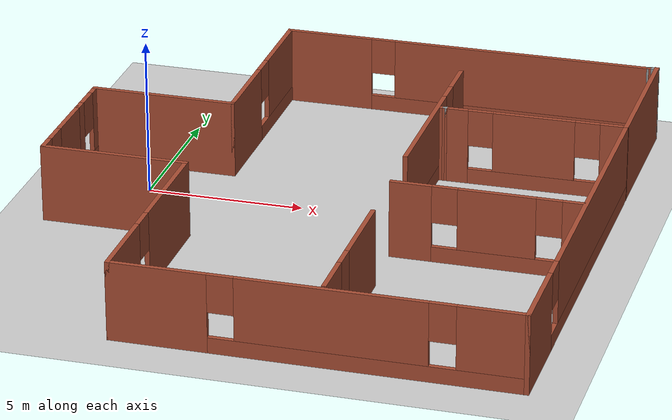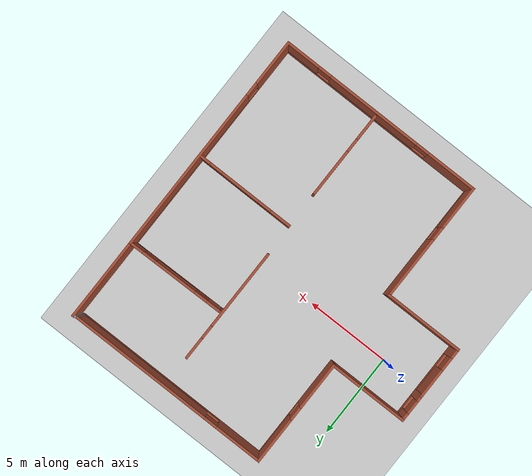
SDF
<sdf version="1.6">
 <world name="default">
  <light name="sun" type="directional">
   <pose>0 0 10 0 -0 0</pose>
   <diffuse>0.8 0.8 0.8 1</diffuse>
   <specular>0.2 0.2 0.2 1</specular>
   <attenuation>
    <range>1000</range>
    <constant>0.9</constant>
    <linear>0.01</linear>
    <quadratic>0.001</quadratic>
   </attenuation>
   <direction>-0.5 0.1 -0.9</direction>
  </light>
  <model name="ground_plane">
   <static>1</static>
   <link name="link">
    <collision name="collision">
     <geometry><plane><normal>0 0 1</normal><size>100 100</size></plane></geometry>
     <surface><friction><ode><mu>100</mu><mu2>50</mu2></ode></friction></surface>
    </collision>
    <visual name="visual">
     <cast_shadows>0</cast_shadows>
     <geometry><plane><normal>0 0 1</normal><size>100 100</size></plane></geometry>
     <material>
      <script><uri>file://media/materials/scripts/gazebo.material</uri><name>Gazebo/Grey</name></script>
     </material>
    </visual>
   </link>
  </model>
  <gravity>0 0 -9.8</gravity>
  <magnetic_field>6e-06 2.3e-05 -4.2e-05</magnetic_field>
  <atmosphere type="adiabatic"/>
  <physics name="default_physics" default="0" type="ode">
   <max_step_size>0.001</max_step_size>
   <real_time_factor>1</real_time_factor>
   <real_time_update_rate>1000</real_time_update_rate>
  </physics>
  <scene><ambient>0.4 0.4 0.4 1</ambient><background>0.7 0.7 0.7 1</background><shadows>1</shadows></scene>
  <audio><device>default</device></audio>
  <spherical_coordinates>
   <surface_model>EARTH_WGS84</surface_model>
   <latitude_deg>0</latitude_deg>
   <longitude_deg>0</longitude_deg>
   <elevation>0</elevation>
   <heading_deg>0</heading_deg>
  </spherical_coordinates>
  <model name="my_world">
   <pose>6.08016 -0.87709 0 0 -0 0</pose>
   <link name="Wall_0">
    <pose>-8.48163 -0.456626 0 0 -0 1.5708</pose>
    <visual name="Wall_0_Visual_0">
     <pose>-1.30339 0 1.25 0 -0 0</pose>
     <geometry><box><size>0.643213 0.15 2.5</size></box></geometry>
     <material>
      <script><uri>file://media/materials/scripts/gazebo.material</uri><name>Gazebo/Bricks</name></script>
      <ambient>1 1 1 1</ambient>
     </material>
     <meta><layer>0</layer></meta>
    </visual>
    <collision name="Wall_0_Collision_0">
     <geometry><box><size>0.643213 0.15 2.5</size></box></geometry>
     <pose>-1.30339 0 1.25 0 -0 0</pose>
    </collision>
    <visual name="Wall_0_Visual_1">
     <pose>0.321607 0 0.25 0 -0 0</pose>
     <geometry><box><size>2.60679 0.15 0.5</size></box></geometry>
     <material>
      <script><uri>file://media/materials/scripts/gazebo.material</uri><name>Gazebo/Bricks</name></script>
      <ambient>1 1 1 1</ambient>
     </material>
     <meta><layer>0</layer></meta>
    </visual>
    <collision name="Wall_0_Collision_1">
     <geometry><box><size>2.60679 0.15 0.5</size></box></geometry>
     <pose>0.321607 0 0.25 0 -0 0</pose>
    </collision>
    <visual name="Wall_0_Visual_2">
     <pose>0.721607 0 1.5 0 -0 0</pose>
     <geometry><box><size>1.80679 0.15 2</size></box></geometry>
     <material>
      <script><uri>file://media/materials/scripts/gazebo.material</uri><name>Gazebo/Bricks</name></script>
      <ambient>1 1 1 1</ambient>
     </material>
     <meta><layer>0</layer></meta>
    </visual>
    <collision name="Wall_0_Collision_2">
     <geometry><box><size>1.80679 0.15 2</size></box></geometry>
     <pose>0.721607 0 1.5 0 -0 0</pose>
    </collision>
    <visual name="Wall_0_Visual_3">
     <pose>-0.581787 0 1.9 0 -0 0</pose>
     <geometry><box><size>0.8 0.15 1.2</size></box></geometry>
     <material>
      <script><uri>file://media/materials/scripts/gazebo.material</uri><name>Gazebo/Bricks</name></script>
      <ambient>1 1 1 1</ambient>
     </material>
     <meta><layer>0</layer></meta>
    </visual>
    <collision name="Wall_0_Collision_3">
     <geometry><box><size>0.8 0.15 1.2</size></box></geometry>
     <pose>-0.581787 0 1.9 0 -0 0</pose>
    </collision>
   </link>
   <link name="Wall_10">
    <pose>8.46837 -2.43163 0 0 -0 1.5708</pose>
    <visual name="Wall_10_Visual_0">
     <pose>-5.36626 0 1.25 0 -0 0</pose>
     <geometry><box><size>2.76748 0.15 2.5</size></box></geometry>
     <material>
      <script><uri>file://media/materials/scripts/gazebo.material</uri><name>Gazebo/Bricks</name></script>
      <ambient>1 1 1 1</ambient>
     </material>
     <meta><layer>0</layer></meta>
    </visual>
    <collision name="Wall_10_Collision_0">
     <geometry><box><size>2.76748 0.15 2.5</size></box></geometry>
     <pose>-5.36626 0 1.25 0 -0 0</pose>
    </collision>
    <visual name="Wall_10_Visual_1">
     <pose>1.38374 0 0.25 0 -0 0</pose>
     <geometry><box><size>10.7325 0.15 0.5</size></box></geometry>
     <material>
      <script><uri>file://media/materials/scripts/gazebo.material</uri><name>Gazebo/Bricks</name></script>
      <ambient>1 1 1 1</ambient>
     </material>
     <meta><layer>0</layer></meta>
    </visual>
    <collision name="Wall_10_Collision_1">
     <geometry><box><size>10.7325 0.15 0.5</size></box></geometry>
     <pose>1.38374 0 0.25 0 -0 0</pose>
    </collision>
    <visual name="Wall_10_Visual_2">
     <pose>1.78374 0 1.5 0 -0 0</pose>
     <geometry><box><size>9.93252 0.15 2</size></box></geometry>
     <material>
      <script><uri>file://media/materials/scripts/gazebo.material</uri><name>Gazebo/Bricks</name></script>
      <ambient>1 1 1 1</ambient>
     </material>
     <meta><layer>0</layer></meta>
    </visual>
    <collision name="Wall_10_Collision_2">
     <geometry><box><size>9.93252 0.15 2</size></box></geometry>
     <pose>1.78374 0 1.5 0 -0 0</pose>
    </collision>
    <visual name="Wall_10_Visual_3">
     <pose>-3.58252 0 1.9 0 -0 0</pose>
     <geometry><box><size>0.8 0.15 1.2</size></box></geometry>
     <material>
      <script><uri>file://media/materials/scripts/gazebo.material</uri><name>Gazebo/Bricks</name></script>
      <ambient>1 1 1 1</ambient>
     </material>
     <meta><layer>0</layer></meta>
    </visual>
    <collision name="Wall_10_Collision_3">
     <geometry><box><size>0.8 0.15 1.2</size></box></geometry>
     <pose>-3.58252 0 1.9 0 -0 0</pose>
    </collision>
   </link>
   <link name="Wall_14">
    <pose>-3.88163 5.86837 0 0 -0 1.5708</pose>
    <visual name="Wall_14_Visual_0">
     <pose>-1.80073 0 1.25 0 -0 0</pose>
     <geometry><box><size>2.89854 0.15 2.5</size></box></geometry>
     <material>
      <script><uri>file://media/materials/scripts/gazebo.material</uri><name>Gazebo/Bricks</name></script>
      <ambient>1 1 1 1</ambient>
     </material>
     <meta><layer>0</layer></meta>
    </visual>
    <collision name="Wall_14_Collision_0">
     <geometry><box><size>2.89854 0.15 2.5</size></box></geometry>
     <pose>-1.80073 0 1.25 0 -0 0</pose>
    </collision>
    <visual name="Wall_14_Visual_1">
     <pose>1.44927 0 0.25 0 -0 0</pose>
     <geometry><box><size>3.60146 0.15 0.5</size></box></geometry>
     <material>
      <script><uri>file://media/materials/scripts/gazebo.material</uri><name>Gazebo/Bricks</name></script>
      <ambient>1 1 1 1</ambient>
     </material>
     <meta><layer>0</layer></meta>
    </visual>
    <collision name="Wall_14_Collision_1">
     <geometry><box><size>3.60146 0.15 0.5</size></box></geometry>
     <pose>1.44927 0 0.25 0 -0 0</pose>
    </collision>
    <visual name="Wall_14_Visual_2">
     <pose>1.84927 0 1.5 0 -0 0</pose>
     <geometry><box><size>2.80146 0.15 2</size></box></geometry>
     <material>
      <script><uri>file://media/materials/scripts/gazebo.material</uri><name>Gazebo/Bricks</name></script>
      <ambient>1 1 1 1</ambient>
     </material>
     <meta><layer>0</layer></meta>
    </visual>
    <collision name="Wall_14_Collision_2">
     <geometry><box><size>2.80146 0.15 2</size></box></geometry>
     <pose>1.84927 0 1.5 0 -0 0</pose>
    </collision>
    <visual name="Wall_14_Visual_3">
     <pose>0.048538 0 1.9 0 -0 0</pose>
     <geometry><box><size>0.8 0.15 1.2</size></box></geometry>
     <material>
      <script><uri>file://media/materials/scripts/gazebo.material</uri><name>Gazebo/Bricks</name></script>
      <ambient>1 1 1 1</ambient>
     </material>
     <meta><layer>0</layer></meta>
    </visual>
    <collision name="Wall_14_Collision_3">
     <geometry><box><size>0.8 0.15 1.2</size></box></geometry>
     <pose>0.048538 0 1.9 0 -0 0</pose>
    </collision>
   </link>
   <link name="Wall_15">
    <pose>2.16837 9.04337 0 0 -0 0</pose>
    <visual name="Wall_15_Visual_0">
     <pose>-4.67821 0 1.25 0 -0 0</pose>
     <geometry><box><size>2.89358 0.15 2.5</size></box></geometry>
     <material>
      <script><uri>file://media/materials/scripts/gazebo.material</uri><name>Gazebo/Bricks</name></script>
      <ambient>1 1 1 1</ambient>
     </material>
     <meta><layer>0</layer></meta>
    </visual>
    <collision name="Wall_15_Collision_0">
     <geometry><box><size>2.89358 0.15 2.5</size></box></geometry>
     <pose>-4.67821 0 1.25 0 -0 0</pose>
    </collision>
    <visual name="Wall_15_Visual_1">
     <pose>1.44679 0 0.25 0 -0 0</pose>
     <geometry><box><size>9.35642 0.15 0.5</size></box></geometry>
     <material>
      <script><uri>file://media/materials/scripts/gazebo.material</uri><name>Gazebo/Bricks</name></script>
      <ambient>1 1 1 1</ambient>
     </material>
     <meta><layer>0</layer></meta>
    </visual>
    <collision name="Wall_15_Collision_1">
     <geometry><box><size>9.35642 0.15 0.5</size></box></geometry>
     <pose>1.44679 0 0.25 0 -0 0</pose>
    </collision>
    <visual name="Wall_15_Visual_2">
     <pose>1.84679 0 1.5 0 -0 0</pose>
     <geometry><box><size>8.55642 0.15 2</size></box></geometry>
     <material>
      <script><uri>file://media/materials/scripts/gazebo.material</uri><name>Gazebo/Bricks</name></script>
      <ambient>1 1 1 1</ambient>
     </material>
     <meta><layer>0</layer></meta>
    </visual>
    <collision name="Wall_15_Collision_2">
     <geometry><box><size>8.55642 0.15 2</size></box></geometry>
     <pose>1.84679 0 1.5 0 -0 0</pose>
    </collision>
    <visual name="Wall_15_Visual_3">
     <pose>-2.83142 0 1.9 0 -0 0</pose>
     <geometry><box><size>0.8 0.15 1.2</size></box></geometry>
     <material>
      <script><uri>file://media/materials/scripts/gazebo.material</uri><name>Gazebo/Bricks</name></script>
      <ambient>1 1 1 1</ambient>
     </material>
     <meta><layer>0</layer></meta>
    </visual>
    <collision name="Wall_15_Collision_3">
     <geometry><box><size>0.8 0.15 1.2</size></box></geometry>
     <pose>-2.83142 0 1.9 0 -0 0</pose>
    </collision>
   </link>
   <link name="Wall_17">
    <collision name="Wall_17_Collision">
     <geometry><box><size>5 0.15 2.5</size></box></geometry>
     <pose>0 0 1.25 0 -0 0</pose>
    </collision>
    <visual name="Wall_17_Visual">
     <pose>0 0 1.25 0 -0 0</pose>
     <geometry><box><size>5 0.15 2.5</size></box></geometry>
     <material>
      <script><uri>file://media/materials/scripts/gazebo.material</uri><name>Gazebo/Bricks</name></script>
      <ambient>1 1 1 1</ambient>
     </material>
     <meta><layer>0</layer></meta>
    </visual>
    <pose>8.46837 6.66837 0 0 -0 1.5708</pose>
   </link>
   <link name="Wall_18">
    <collision name="Wall_18_Collision">
     <geometry><box><size>0.404951 0.15 2.5</size></box></geometry>
     <pose>0 0 1.25 0 -0 0</pose>
    </collision>
    <visual name="Wall_18_Visual">
     <pose>0 0 1.25 0 -0 0</pose>
     <geometry><box><size>0.404951 0.15 2.5</size></box></geometry>
     <material>
      <script><uri>file://media/materials/scripts/gazebo.material</uri><name>Gazebo/Grey</name></script>
      <ambient>1 1 1 1</ambient>
     </material>
     <meta><layer>0</layer></meta>
    </visual>
    <pose>8.34337 9.06837 0 0 -0 -2.9442</pose>
   </link>
   <link name="Wall_2">
    <pose>-8.48163 1.89337 0 0 -0 1.5708</pose>
    <visual name="Wall_2_Visual_0">
     <pose>-0.658826 0 1.25 0 -0 0</pose>
     <geometry><box><size>0.432348 0.15 2.5</size></box></geometry>
     <material>
      <script><uri>file://media/materials/scripts/gazebo.material</uri><name>Gazebo/Bricks</name></script>
      <ambient>1 1 1 1</ambient>
     </material>
     <meta><layer>0</layer></meta>
    </visual>
    <collision name="Wall_2_Collision_0">
     <geometry><box><size>0.432348 0.15 2.5</size></box></geometry>
     <pose>-0.658826 0 1.25 0 -0 0</pose>
    </collision>
    <visual name="Wall_2_Visual_1">
     <pose>0.216174 0 0.25 0 -0 0</pose>
     <geometry><box><size>1.31765 0.15 0.5</size></box></geometry>
     <material>
      <script><uri>file://media/materials/scripts/gazebo.material</uri><name>Gazebo/Bricks</name></script>
      <ambient>1 1 1 1</ambient>
     </material>
     <meta><layer>0</layer></meta>
    </visual>
    <collision name="Wall_2_Collision_1">
     <geometry><box><size>1.31765 0.15 0.5</size></box></geometry>
     <pose>0.216174 0 0.25 0 -0 0</pose>
    </collision>
    <visual name="Wall_2_Visual_2">
     <pose>0.616174 0 1.5 0 -0 0</pose>
     <geometry><box><size>0.517652 0.15 2</size></box></geometry>
     <material>
      <script><uri>file://media/materials/scripts/gazebo.material</uri><name>Gazebo/Bricks</name></script>
      <ambient>1 1 1 1</ambient>
     </material>
     <meta><layer>0</layer></meta>
    </visual>
    <collision name="Wall_2_Collision_2">
     <geometry><box><size>0.517652 0.15 2</size></box></geometry>
     <pose>0.616174 0 1.5 0 -0 0</pose>
    </collision>
    <visual name="Wall_2_Visual_3">
     <pose>-0.042652 0 1.9 0 -0 0</pose>
     <geometry><box><size>0.8 0.15 1.2</size></box></geometry>
     <material>
      <script><uri>file://media/materials/scripts/gazebo.material</uri><name>Gazebo/Bricks</name></script>
      <ambient>1 1 1 1</ambient>
     </material>
     <meta><layer>0</layer></meta>
    </visual>
    <collision name="Wall_2_Collision_3">
     <geometry><box><size>0.8 0.15 1.2</size></box></geometry>
     <pose>-0.042652 0 1.9 0 -0 0</pose>
    </collision>
   </link>
   <link name="Wall_26">
    <pose>2.42963 3.70231 0 0 -0 -1.5708</pose>
    <visual name="Wall_26_Visual_0">
     <pose>-2.81654 0 1.25 0 -0 0</pose>
     <geometry><box><size>1.36692 0.15 2.5</size></box></geometry>
     <material>
      <script><uri>file://media/materials/scripts/gazebo.material</uri><name>Gazebo/Bricks</name></script>
      <ambient>1 1 1 1</ambient>
     </material>
     <meta><layer>0</layer></meta>
    </visual>
    <collision name="Wall_26_Collision_0">
     <geometry><box><size>1.36692 0.15 2.5</size></box></geometry>
     <pose>-2.81654 0 1.25 0 -0 0</pose>
    </collision>
    <visual name="Wall_26_Visual_1">
     <pose>0.683462 0 0.25 0 -0 0</pose>
     <geometry><box><size>5.63307 0.15 0.5</size></box></geometry>
     <material>
      <script><uri>file://media/materials/scripts/gazebo.material</uri><name>Gazebo/Bricks</name></script>
      <ambient>1 1 1 1</ambient>
     </material>
     <meta><layer>0</layer></meta>
    </visual>
    <collision name="Wall_26_Collision_1">
     <geometry><box><size>5.63307 0.15 0.5</size></box></geometry>
     <pose>0.683462 0 0.25 0 -0 0</pose>
    </collision>
    <visual name="Wall_26_Visual_2">
     <pose>1.08346 0 1.5 0 -0 0</pose>
     <geometry><box><size>4.83308 0.15 2</size></box></geometry>
     <material>
      <script><uri>file://media/materials/scripts/gazebo.material</uri><name>Gazebo/Bricks</name></script>
      <ambient>1 1 1 1</ambient>
     </material>
     <meta><layer>0</layer></meta>
    </visual>
    <collision name="Wall_26_Collision_2">
     <geometry><box><size>4.83308 0.15 2</size></box></geometry>
     <pose>1.08346 0 1.5 0 -0 0</pose>
    </collision>
    <visual name="Wall_26_Visual_3">
     <pose>-1.73307 0 1.9 0 -0 0</pose>
     <geometry><box><size>0.8 0.15 1.2</size></box></geometry>
     <material>
      <script><uri>file://media/materials/scripts/gazebo.material</uri><name>Gazebo/Bricks</name></script>
      <ambient>1 1 1 1</ambient>
     </material>
     <meta><layer>0</layer></meta>
    </visual>
    <collision name="Wall_26_Collision_3">
     <geometry><box><size>0.8 0.15 1.2</size></box></geometry>
     <pose>-1.73307 0 1.9 0 -0 0</pose>
    </collision>
   </link>
   <link name="Wall_28">
    <pose>2.51055 -6.34569 0 0 -0 -1.5708</pose>
    <visual name="Wall_28_Visual_0">
     <pose>-1.19675 0 1.25 0 -0 0</pose>
     <geometry><box><size>2.8565 0.15 2.5</size></box></geometry>
     <material>
      <script><uri>file://media/materials/scripts/gazebo.material</uri><name>Gazebo/Bricks</name></script>
      <ambient>1 1 1 1</ambient>
     </material>
     <meta><layer>0</layer></meta>
    </visual>
    <collision name="Wall_28_Collision_0">
     <geometry><box><size>2.8565 0.15 2.5</size></box></geometry>
     <pose>-1.19675 0 1.25 0 -0 0</pose>
    </collision>
    <visual name="Wall_28_Visual_1">
     <pose>1.42825 0 0.25 0 -0 0</pose>
     <geometry><box><size>2.3935 0.15 0.5</size></box></geometry>
     <material>
      <script><uri>file://media/materials/scripts/gazebo.material</uri><name>Gazebo/Bricks</name></script>
      <ambient>1 1 1 1</ambient>
     </material>
     <meta><layer>0</layer></meta>
    </visual>
    <collision name="Wall_28_Collision_1">
     <geometry><box><size>2.3935 0.15 0.5</size></box></geometry>
     <pose>1.42825 0 0.25 0 -0 0</pose>
    </collision>
    <visual name="Wall_28_Visual_2">
     <pose>1.82825 0 1.5 0 -0 0</pose>
     <geometry><box><size>1.5935 0.15 2</size></box></geometry>
     <material>
      <script><uri>file://media/materials/scripts/gazebo.material</uri><name>Gazebo/Bricks</name></script>
      <ambient>1 1 1 1</ambient>
     </material>
     <meta><layer>0</layer></meta>
    </visual>
    <collision name="Wall_28_Collision_2">
     <geometry><box><size>1.5935 0.15 2</size></box></geometry>
     <pose>1.82825 0 1.5 0 -0 0</pose>
    </collision>
    <visual name="Wall_28_Visual_3">
     <pose>0.631499 0 1.9 0 -0 0</pose>
     <geometry><box><size>0.8 0.15 1.2</size></box></geometry>
     <material>
      <script><uri>file://media/materials/scripts/gazebo.material</uri><name>Gazebo/Bricks</name></script>
      <ambient>1 1 1 1</ambient>
     </material>
     <meta><layer>0</layer></meta>
    </visual>
    <collision name="Wall_28_Collision_3">
     <geometry><box><size>0.8 0.15 1.2</size></box></geometry>
     <pose>0.631499 0 1.9 0 -0 0</pose>
    </collision>
   </link>
   <link name="Wall_3">
    <collision name="Wall_3_Collision">
     <geometry><box><size>4.75 0.15 2.5</size></box></geometry>
     <pose>0 0 1.25 0 -0 0</pose>
    </collision>
    <visual name="Wall_3_Visual">
     <pose>0 0 1.25 0 -0 0</pose>
     <geometry><box><size>4.75 0.15 2.5</size></box></geometry>
     <material>
      <script><uri>file://media/materials/scripts/gazebo.material</uri><name>Gazebo/Bricks</name></script>
      <ambient>1 1 1 1</ambient>
     </material>
     <meta><layer>0</layer></meta>
    </visual>
    <pose>-6.18163 2.69337 0 0 -0 0</pose>
   </link>
   <link name="Wall_30">
    <pose>5.43555 -1.61109 0 0 -0 0</pose>
    <visual name="Wall_30_Visual_0">
     <pose>-2.34168 0 1.25 0 -0 0</pose>
     <geometry><box><size>1.31663 0.15 2.5</size></box></geometry>
     <material>
      <script><uri>file://media/materials/scripts/gazebo.material</uri><name>Gazebo/Bricks</name></script>
      <ambient>1 1 1 1</ambient>
     </material>
     <meta><layer>0</layer></meta>
    </visual>
    <collision name="Wall_30_Collision_0">
     <geometry><box><size>1.31663 0.15 2.5</size></box></geometry>
     <pose>-2.34168 0 1.25 0 -0 0</pose>
    </collision>
    <visual name="Wall_30_Visual_1">
     <pose>0.658317 0 0.25 0 -0 0</pose>
     <geometry><box><size>4.68337 0.15 0.5</size></box></geometry>
     <material>
      <script><uri>file://media/materials/scripts/gazebo.material</uri><name>Gazebo/Bricks</name></script>
      <ambient>1 1 1 1</ambient>
     </material>
     <meta><layer>0</layer></meta>
    </visual>
    <collision name="Wall_30_Collision_1">
     <geometry><box><size>4.68337 0.15 0.5</size></box></geometry>
     <pose>0.658317 0 0.25 0 -0 0</pose>
    </collision>
    <visual name="Wall_30_Visual_2">
     <pose>0.321709 0 1.5 0 -0 0</pose>
     <geometry><box><size>2.41015 0.15 2</size></box></geometry>
     <material>
      <script><uri>file://media/materials/scripts/gazebo.material</uri><name>Gazebo/Bricks</name></script>
      <ambient>1 1 1 1</ambient>
     </material>
     <meta><layer>0</layer></meta>
    </visual>
    <collision name="Wall_30_Collision_2">
     <geometry><box><size>2.41015 0.15 2</size></box></geometry>
     <pose>0.321709 0 1.5 0 -0 0</pose>
    </collision>
    <visual name="Wall_30_Visual_3">
     <pose>2.66339 0 1.5 0 -0 0</pose>
     <geometry><box><size>0.673216 0.15 2</size></box></geometry>
     <material>
      <script><uri>file://media/materials/scripts/gazebo.material</uri><name>Gazebo/Bricks</name></script>
      <ambient>1 1 1 1</ambient>
     </material>
     <meta><layer>0</layer></meta>
    </visual>
    <collision name="Wall_30_Collision_3">
     <geometry><box><size>0.673216 0.15 2</size></box></geometry>
     <pose>2.66339 0 1.5 0 -0 0</pose>
    </collision>
    <visual name="Wall_30_Visual_4">
     <pose>-1.28337 0 1.9 0 -0 0</pose>
     <geometry><box><size>0.8 0.15 1.2</size></box></geometry>
     <material>
      <script><uri>file://media/materials/scripts/gazebo.material</uri><name>Gazebo/Bricks</name></script>
      <ambient>1 1 1 1</ambient>
     </material>
     <meta><layer>0</layer></meta>
    </visual>
    <collision name="Wall_30_Collision_4">
     <geometry><box><size>0.8 0.15 1.2</size></box></geometry>
     <pose>-1.28337 0 1.9 0 -0 0</pose>
    </collision>
    <visual name="Wall_30_Visual_5">
     <pose>1.92678 0 1.9 0 -0 0</pose>
     <geometry><box><size>0.8 0.15 1.2</size></box></geometry>
     <material>
      <script><uri>file://media/materials/scripts/gazebo.material</uri><name>Gazebo/Bricks</name></script>
      <ambient>1 1 1 1</ambient>
     </material>
     <meta><layer>0</layer></meta>
    </visual>
    <collision name="Wall_30_Collision_5">
     <geometry><box><size>0.8 0.15 1.2</size></box></geometry>
     <pose>1.92678 0 1.9 0 -0 0</pose>
    </collision>
   </link>
   <link name="Wall_32">
    <pose>5.57037 4.20871 0 0 -0 0.011959</pose>
    <visual name="Wall_32_Visual_0">
     <pose>-2.55681 0 1.25 0 -0 0</pose>
     <geometry><box><size>0.832801 0.15 2.5</size></box></geometry>
     <material>
      <script><uri>file://media/materials/scripts/gazebo.material</uri><name>Gazebo/Bricks</name></script>
      <ambient>1 1 1 1</ambient>
     </material>
     <meta><layer>0</layer></meta>
    </visual>
    <collision name="Wall_32_Collision_0">
     <geometry><box><size>0.832801 0.15 2.5</size></box></geometry>
     <pose>-2.55681 0 1.25 0 -0 0</pose>
    </collision>
    <visual name="Wall_32_Visual_1">
     <pose>0.416401 0 0.25 0 -0 0</pose>
     <geometry><box><size>5.11362 0.15 0.5</size></box></geometry>
     <material>
      <script><uri>file://media/materials/scripts/gazebo.material</uri><name>Gazebo/Bricks</name></script>
      <ambient>1 1 1 1</ambient>
     </material>
     <meta><layer>0</layer></meta>
    </visual>
    <collision name="Wall_32_Collision_1">
     <geometry><box><size>5.11362 0.15 0.5</size></box></geometry>
     <pose>0.416401 0 0.25 0 -0 0</pose>
    </collision>
    <visual name="Wall_32_Visual_2">
     <pose>-0.027812 0 1.5 0 -0 0</pose>
     <geometry><box><size>2.6252 0.15 2</size></box></geometry>
     <material>
      <script><uri>file://media/materials/scripts/gazebo.material</uri><name>Gazebo/Bricks</name></script>
      <ambient>1 1 1 1</ambient>
     </material>
     <meta><layer>0</layer></meta>
    </visual>
    <collision name="Wall_32_Collision_2">
     <geometry><box><size>2.6252 0.15 2</size></box></geometry>
     <pose>-0.027812 0 1.5 0 -0 0</pose>
    </collision>
    <visual name="Wall_32_Visual_3">
     <pose>2.529 0 1.5 0 -0 0</pose>
     <geometry><box><size>0.888425 0.15 2</size></box></geometry>
     <material>
      <script><uri>file://media/materials/scripts/gazebo.material</uri><name>Gazebo/Bricks</name></script>
      <ambient>1 1 1 1</ambient>
     </material>
     <meta><layer>0</layer></meta>
    </visual>
    <collision name="Wall_32_Collision_3">
     <geometry><box><size>0.888425 0.15 2</size></box></geometry>
     <pose>2.529 0 1.5 0 -0 0</pose>
    </collision>
    <visual name="Wall_32_Visual_4">
     <pose>-1.74041 0 1.9 0 -0 0</pose>
     <geometry><box><size>0.8 0.15 1.2</size></box></geometry>
     <material>
      <script><uri>file://media/materials/scripts/gazebo.material</uri><name>Gazebo/Bricks</name></script>
      <ambient>1 1 1 1</ambient>
     </material>
     <meta><layer>0</layer></meta>
    </visual>
    <collision name="Wall_32_Collision_4">
     <geometry><box><size>0.8 0.15 1.2</size></box></geometry>
     <pose>-1.74041 0 1.9 0 -0 0</pose>
    </collision>
    <visual name="Wall_32_Visual_5">
     <pose>1.68479 0 1.9 0 -0 0</pose>
     <geometry><box><size>0.8 0.15 1.2</size></box></geometry>
     <material>
      <script><uri>file://media/materials/scripts/gazebo.material</uri><name>Gazebo/Bricks</name></script>
      <ambient>1 1 1 1</ambient>
     </material>
     <meta><layer>0</layer></meta>
    </visual>
    <collision name="Wall_32_Collision_5">
     <geometry><box><size>0.8 0.15 1.2</size></box></geometry>
     <pose>1.68479 0 1.9 0 -0 0</pose>
    </collision>
   </link>
   <link name="Wall_34">
    <collision name="Wall_34_Collision">
     <geometry><box><size>0.15 0.15 2.5</size></box></geometry>
     <pose>0 0 1.25 0 -0 0</pose>
    </collision>
    <visual name="Wall_34_Visual">
     <pose>0 0 1.25 0 -0 0</pose>
     <geometry><box><size>0.15 0.15 2.5</size></box></geometry>
     <material>
      <script><uri>file://media/materials/scripts/gazebo.material</uri><name>Gazebo/Grey</name></script>
      <ambient>1 1 1 1</ambient>
     </material>
     <meta><layer>0</layer></meta>
    </visual>
    <pose>2.67237 4.17406 0 0 -0 0</pose>
   </link>
   <link name="Wall_35">
    <collision name="Wall_35_Collision">
     <geometry><box><size>0.25 0.15 2.5</size></box></geometry>
     <pose>0 0 1.25 0 -0 0</pose>
    </collision>
    <visual name="Wall_35_Visual">
     <pose>0 0 1.25 0 -0 0</pose>
     <geometry><box><size>0.25 0.15 2.5</size></box></geometry>
     <material>
      <script><uri>file://media/materials/scripts/gazebo.material</uri><name>Gazebo/Bricks</name></script>
      <ambient>1 1 1 1</ambient>
     </material>
     <meta><layer>0</layer></meta>
    </visual>
    <pose>2.62237 4.17406 0 0 -0 3.14159</pose>
   </link>
   <link name="Wall_5">
    <collision name="Wall_5_Collision">
     <geometry><box><size>4.75 0.15 2.5</size></box></geometry>
     <pose>0 0 1.25 0 -0 0</pose>
    </collision>
    <visual name="Wall_5_Visual">
     <pose>0 0 1.25 0 -0 0</pose>
     <geometry><box><size>4.75 0.15 2.5</size></box></geometry>
     <material>
      <script><uri>file://media/materials/scripts/gazebo.material</uri><name>Gazebo/Bricks</name></script>
      <ambient>1 1 1 1</ambient>
     </material>
     <meta><layer>0</layer></meta>
    </visual>
    <pose>-6.18163 -2.00663 0 0 -0 0</pose>
   </link>
   <link name="Wall_7">
    <pose>-3.88163 -5.55663 0 0 -0 -1.5708</pose>
    <visual name="Wall_7_Visual_0">
     <pose>-1.73024 0 1.25 0 -0 0</pose>
     <geometry><box><size>3.78952 0.15 2.5</size></box></geometry>
     <material>
      <script><uri>file://media/materials/scripts/gazebo.material</uri><name>Gazebo/Bricks</name></script>
      <ambient>1 1 1 1</ambient>
     </material>
     <meta><layer>0</layer></meta>
    </visual>
    <collision name="Wall_7_Collision_0">
     <geometry><box><size>3.78952 0.15 2.5</size></box></geometry>
     <pose>-1.73024 0 1.25 0 -0 0</pose>
    </collision>
    <visual name="Wall_7_Visual_1">
     <pose>1.89476 0 0.25 0 -0 0</pose>
     <geometry><box><size>3.46048 0.15 0.5</size></box></geometry>
     <material>
      <script><uri>file://media/materials/scripts/gazebo.material</uri><name>Gazebo/Bricks</name></script>
      <ambient>1 1 1 1</ambient>
     </material>
     <meta><layer>0</layer></meta>
    </visual>
    <collision name="Wall_7_Collision_1">
     <geometry><box><size>3.46048 0.15 0.5</size></box></geometry>
     <pose>1.89476 0 0.25 0 -0 0</pose>
    </collision>
    <visual name="Wall_7_Visual_2">
     <pose>2.29476 0 1.5 0 -0 0</pose>
     <geometry><box><size>2.66048 0.15 2</size></box></geometry>
     <material>
      <script><uri>file://media/materials/scripts/gazebo.material</uri><name>Gazebo/Bricks</name></script>
      <ambient>1 1 1 1</ambient>
     </material>
     <meta><layer>0</layer></meta>
    </visual>
    <collision name="Wall_7_Collision_2">
     <geometry><box><size>2.66048 0.15 2</size></box></geometry>
     <pose>2.29476 0 1.5 0 -0 0</pose>
    </collision>
    <visual name="Wall_7_Visual_3">
     <pose>0.564524 0 1.9 0 -0 0</pose>
     <geometry><box><size>0.8 0.15 1.2</size></box></geometry>
     <material>
      <script><uri>file://media/materials/scripts/gazebo.material</uri><name>Gazebo/Bricks</name></script>
      <ambient>1 1 1 1</ambient>
     </material>
     <meta><layer>0</layer></meta>
    </visual>
    <collision name="Wall_7_Collision_3">
     <geometry><box><size>0.8 0.15 1.2</size></box></geometry>
     <pose>0.564524 0 1.9 0 -0 0</pose>
    </collision>
   </link>
   <link name="Wall_9">
    <pose>2.29337 -9.10663 0 0 -0 0</pose>
    <visual name="Wall_9_Visual_0">
     <pose>-4.72296 0 1.25 0 -0 0</pose>
     <geometry><box><size>3.05409 0.15 2.5</size></box></geometry>
     <material>
      <script><uri>file://media/materials/scripts/gazebo.material</uri><name>Gazebo/Bricks</name></script>
      <ambient>1 1 1 1</ambient>
     </material>
     <meta><layer>0</layer></meta>
    </visual>
    <collision name="Wall_9_Collision_0">
     <geometry><box><size>3.05409 0.15 2.5</size></box></geometry>
     <pose>-4.72296 0 1.25 0 -0 0</pose>
    </collision>
    <visual name="Wall_9_Visual_1">
     <pose>1.52704 0 0.25 0 -0 0</pose>
     <geometry><box><size>9.44591 0.15 0.5</size></box></geometry>
     <material>
      <script><uri>file://media/materials/scripts/gazebo.material</uri><name>Gazebo/Bricks</name></script>
      <ambient>1 1 1 1</ambient>
     </material>
     <meta><layer>0</layer></meta>
    </visual>
    <collision name="Wall_9_Collision_1">
     <geometry><box><size>9.44591 0.15 0.5</size></box></geometry>
     <pose>1.52704 0 0.25 0 -0 0</pose>
    </collision>
    <visual name="Wall_9_Visual_2">
     <pose>0.467739 0 1.5 0 -0 0</pose>
     <geometry><box><size>5.72731 0.15 2</size></box></geometry>
     <material>
      <script><uri>file://media/materials/scripts/gazebo.material</uri><name>Gazebo/Bricks</name></script>
      <ambient>1 1 1 1</ambient>
     </material>
     <meta><layer>0</layer></meta>
    </visual>
    <collision name="Wall_9_Collision_2">
     <geometry><box><size>5.72731 0.15 2</size></box></geometry>
     <pose>0.467739 0 1.5 0 -0 0</pose>
    </collision>
    <visual name="Wall_9_Visual_3">
     <pose>5.1907 0 1.5 0 -0 0</pose>
     <geometry><box><size>2.11861 0.15 2</size></box></geometry>
     <material>
      <script><uri>file://media/materials/scripts/gazebo.material</uri><name>Gazebo/Bricks</name></script>
      <ambient>1 1 1 1</ambient>
     </material>
     <meta><layer>0</layer></meta>
    </visual>
    <collision name="Wall_9_Collision_3">
     <geometry><box><size>2.11861 0.15 2</size></box></geometry>
     <pose>5.1907 0 1.5 0 -0 0</pose>
    </collision>
    <visual name="Wall_9_Visual_4">
     <pose>-2.79591 0 1.9 0 -0 0</pose>
     <geometry><box><size>0.8 0.15 1.2</size></box></geometry>
     <material>
      <script><uri>file://media/materials/scripts/gazebo.material</uri><name>Gazebo/Bricks</name></script>
      <ambient>1 1 1 1</ambient>
     </material>
     <meta><layer>0</layer></meta>
    </visual>
    <collision name="Wall_9_Collision_4">
     <geometry><box><size>0.8 0.15 1.2</size></box></geometry>
     <pose>-2.79591 0 1.9 0 -0 0</pose>
    </collision>
    <visual name="Wall_9_Visual_5">
     <pose>3.73139 0 1.9 0 -0 0</pose>
     <geometry><box><size>0.8 0.15 1.2</size></box></geometry>
     <material>
      <script><uri>file://media/materials/scripts/gazebo.material</uri><name>Gazebo/Bricks</name></script>
      <ambient>1 1 1 1</ambient>
     </material>
     <meta><layer>0</layer></meta>
    </visual>
    <collision name="Wall_9_Collision_5">
     <geometry><box><size>0.8 0.15 1.2</size></box></geometry>
     <pose>3.73139 0 1.9 0 -0 0</pose>
    </collision>
   </link>
   <static>1</static>
  </model>
 </world>
</sdf>
